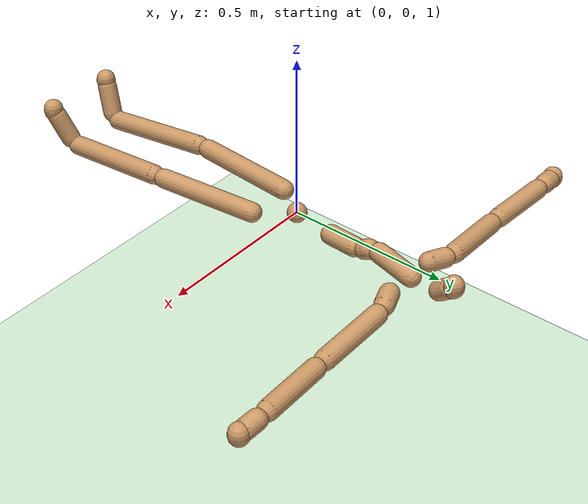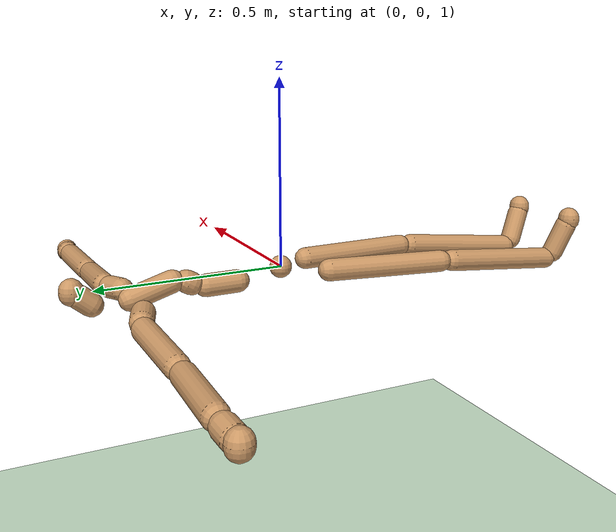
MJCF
<mujoco model="humanoid">
  <compiler angle="degree" inertiafromgeom="true" coordinate="global"/>
  <include file="./common/materials.xml"/>
  <size njmax="8000" nconmax="4000"/>
  <visual>
    <headlight ambient=".4 .4 .4" diffuse=".8 .8 .8" specular="0.1 0.1 0.1"/>
    <map znear=".01"/>
    <quality shadowsize="2048"/>
  </visual>
  <default>
    <joint damping="0.0" armature="0.01" stiffness="0.0" limited="true"/>
    <geom conaffinity="7" condim="1" contype="7" margin="0.001" material="self" rgba="0.8 0.6 .4 1"/>
  </default>
  <statistic extent="3" center="0 0 1"/>
  <option timestep="0.00222222222"/>
  <asset>
    <texture type="skybox" file="./common/sky1.png" gridsize="3 4" gridlayout=".U..LFRB.D.." width="8192" height="8192"/>
    <texture builtin="flat" height="1278" mark="cross" markrgb="1 1 1" name="texgeom" random="0.01" rgb1=".8 .6 .4" rgb2=".8 .6 .4" type="cube" width="127"/>
  </asset>
  <worldbody>
    <light cutoff="100" diffuse="1 1 1" dir="-0 0 -1.3" directional="true" exponent="1" pos="0 0 1.3" specular=".1 .1 .1"/>
    <geom condim="3" friction="1. .1 .1" material="grid" name="floor" pos="0 0 0" rgba=".8 .9 .8 1" size="100 100 .2" type="plane"/>
    <body name="Hips" pos="0.0000 0.0000 1.0000" user="-0.0001 -0.0251 0.9883">
      <joint name="Hips" pos="0.0000 0.0000 1.0000" limited="false" type="free" armature="0" damping="0" stiffness="0"/>
      <geom size="0.0300" type="sphere" pos="0.0000 0.0000 1.0000"/>
      <body name="LeftUpLeg" pos="0.0714 -0.0896 0.9920" user="0.1020 -0.4538 0.9853">
        <joint name="LeftUpLeg_z" type="hinge" pos="0.0714 -0.0896 0.9920" axis="0.0000 0.0000 1.0000" range="-180.0000 180.0000"/>
        <joint name="LeftUpLeg_x" type="hinge" pos="0.0714 -0.0896 0.9920" axis="1.0000 0.0000 0.0000" range="-180.0000 180.0000"/>
        <joint name="LeftUpLeg_y" type="hinge" pos="0.0714 -0.0896 0.9920" axis="0.0000 1.0000 0.0000" range="-180.0000 180.0000"/>
        <geom size="0.0300" type="capsule" fromto="0.0730 -0.1095 0.9916 0.1004 -0.4339 0.9856"/>
        <body name="LeftLeg" pos="0.1020 -0.4538 0.9853" user="0.0905 -0.8371 0.9418">
          <joint name="LeftLeg_z" type="hinge" pos="0.1020 -0.4538 0.9853" axis="0.0000 0.0000 1.0000" range="-180.0000 180.0000"/>
          <joint name="LeftLeg_x" type="hinge" pos="0.1020 -0.4538 0.9853" axis="1.0000 0.0000 0.0000" range="-180.0000 180.0000"/>
          <joint name="LeftLeg_y" type="hinge" pos="0.1020 -0.4538 0.9853" axis="0.0000 1.0000 0.0000" range="-180.0000 180.0000"/>
          <geom size="0.0300" type="capsule" fromto="0.1014 -0.4737 0.9830 0.0911 -0.8173 0.9440"/>
          <body name="LeftFoot" pos="0.0905 -0.8371 0.9418" user="0.1138 -0.8918 1.0561">
            <joint name="LeftFoot_z" type="hinge" pos="0.0905 -0.8371 0.9418" axis="0.0000 0.0000 1.0000" range="-180.0000 180.0000"/>
            <joint name="LeftFoot_x" type="hinge" pos="0.0905 -0.8371 0.9418" axis="1.0000 0.0000 0.0000" range="-180.0000 180.0000"/>
            <joint name="LeftFoot_y" type="hinge" pos="0.0905 -0.8371 0.9418" axis="0.0000 1.0000 0.0000" range="-180.0000 180.0000"/>
            <geom size="0.0300" type="capsule" fromto="0.0941 -0.8456 0.9595 0.1102 -0.8833 1.0384"/>
            <body name="LeftToe" pos="0.1138 -0.8918 1.0561" user="0.1138 -0.8918 1.0561">
              <joint name="LeftToe_z" type="hinge" pos="0.1138 -0.8918 1.0561" axis="0.0000 0.0000 1.0000" range="-180.0000 180.0000"/>
              <joint name="LeftToe_x" type="hinge" pos="0.1138 -0.8918 1.0561" axis="1.0000 0.0000 0.0000" range="-180.0000 180.0000"/>
              <joint name="LeftToe_y" type="hinge" pos="0.1138 -0.8918 1.0561" axis="0.0000 1.0000 0.0000" range="-180.0000 180.0000"/>
              <geom size="0.0300" type="capsule" fromto="0.1138 -0.8918 1.0601 0.1138 -0.8918 1.0521"/>
            </body>
          </body>
        </body>
      </body>
      <body name="RightUpLeg" pos="-0.0690 -0.0890 0.9952" user="-0.1052 -0.4596 0.9860">
        <joint name="RightUpLeg_z" type="hinge" pos="-0.0690 -0.0890 0.9952" axis="0.0000 0.0000 1.0000" range="-180.0000 180.0000"/>
        <joint name="RightUpLeg_x" type="hinge" pos="-0.0690 -0.0890 0.9952" axis="1.0000 0.0000 0.0000" range="-180.0000 180.0000"/>
        <joint name="RightUpLeg_y" type="hinge" pos="-0.0690 -0.0890 0.9952" axis="0.0000 1.0000 0.0000" range="-180.0000 180.0000"/>
        <geom size="0.0300" type="capsule" fromto="-0.0710 -0.1089 0.9947 -0.1032 -0.4397 0.9865"/>
        <body name="RightLeg" pos="-0.1052 -0.4596 0.9860" user="-0.0911 -0.8432 0.9441">
          <joint name="RightLeg_z" type="hinge" pos="-0.1052 -0.4596 0.9860" axis="0.0000 0.0000 1.0000" range="-180.0000 180.0000"/>
          <joint name="RightLeg_x" type="hinge" pos="-0.1052 -0.4596 0.9860" axis="1.0000 0.0000 0.0000" range="-180.0000 180.0000"/>
          <joint name="RightLeg_y" type="hinge" pos="-0.1052 -0.4596 0.9860" axis="0.0000 1.0000 0.0000" range="-180.0000 180.0000"/>
          <geom size="0.0300" type="capsule" fromto="-0.1044 -0.4795 0.9838 -0.0919 -0.8234 0.9463"/>
          <body name="RightFoot" pos="-0.0911 -0.8432 0.9441" user="-0.1132 -0.8897 1.0620">
            <joint name="RightFoot_z" type="hinge" pos="-0.0911 -0.8432 0.9441" axis="0.0000 0.0000 1.0000" range="-180.0000 180.0000"/>
            <joint name="RightFoot_x" type="hinge" pos="-0.0911 -0.8432 0.9441" axis="1.0000 0.0000 0.0000" range="-180.0000 180.0000"/>
            <joint name="RightFoot_y" type="hinge" pos="-0.0911 -0.8432 0.9441" axis="0.0000 1.0000 0.0000" range="-180.0000 180.0000"/>
            <geom size="0.0300" type="capsule" fromto="-0.0946 -0.8505 0.9625 -0.1098 -0.8824 1.0437"/>
            <body name="RightToe" pos="-0.1132 -0.8897 1.0620" user="-0.1132 -0.8897 1.0620">
              <joint name="RightToe_z" type="hinge" pos="-0.1132 -0.8897 1.0620" axis="0.0000 0.0000 1.0000" range="-180.0000 180.0000"/>
              <joint name="RightToe_x" type="hinge" pos="-0.1132 -0.8897 1.0620" axis="1.0000 0.0000 0.0000" range="-180.0000 180.0000"/>
              <joint name="RightToe_y" type="hinge" pos="-0.1132 -0.8897 1.0620" axis="0.0000 1.0000 0.0000" range="-180.0000 180.0000"/>
              <geom size="0.0300" type="capsule" fromto="-0.1132 -0.8897 1.0660 -0.1132 -0.8897 1.0580"/>
            </body>
          </body>
        </body>
      </body>
      <body name="Spine" pos="-0.0025 0.1033 0.9778" user="0.0011 0.2309 0.9761">
        <joint name="Spine_z" type="hinge" pos="-0.0025 0.1033 0.9778" axis="0.0000 0.0000 1.0000" range="-180.0000 180.0000"/>
        <joint name="Spine_x" type="hinge" pos="-0.0025 0.1033 0.9778" axis="1.0000 0.0000 0.0000" range="-180.0000 180.0000"/>
        <joint name="Spine_y" type="hinge" pos="-0.0025 0.1033 0.9778" axis="0.0000 1.0000 0.0000" range="-180.0000 180.0000"/>
        <geom size="0.0300" type="capsule" fromto="-0.0019 0.1232 0.9775 0.0005 0.2109 0.9764"/>
        <body name="Spine1" pos="0.0011 0.2309 0.9761" user="0.0031 0.2800 1.0040">
          <joint name="Spine1_z" type="hinge" pos="0.0011 0.2309 0.9761" axis="0.0000 0.0000 1.0000" range="-180.0000 180.0000"/>
          <joint name="Spine1_x" type="hinge" pos="0.0011 0.2309 0.9761" axis="1.0000 0.0000 0.0000" range="-180.0000 180.0000"/>
          <joint name="Spine1_y" type="hinge" pos="0.0011 0.2309 0.9761" axis="0.0000 1.0000 0.0000" range="-180.0000 180.0000"/>
          <geom size="0.0300" type="capsule" fromto="0.0018 0.2483 0.9860 0.0024 0.2626 0.9941"/>
          <body name="Spine2" pos="0.0031 0.2800 1.0040" user="0.0019 0.4272 0.9612">
            <joint name="Spine2_z" type="hinge" pos="0.0031 0.2800 1.0040" axis="0.0000 0.0000 1.0000" range="-180.0000 180.0000"/>
            <joint name="Spine2_x" type="hinge" pos="0.0031 0.2800 1.0040" axis="1.0000 0.0000 0.0000" range="-180.0000 180.0000"/>
            <joint name="Spine2_y" type="hinge" pos="0.0031 0.2800 1.0040" axis="0.0000 1.0000 0.0000" range="-180.0000 180.0000"/>
            <geom size="0.0300" type="capsule" fromto="0.0029 0.2992 0.9984 0.0020 0.4080 0.9667"/>
            <body name="Neck" pos="0.0011 0.4882 0.9542" user="0.0047 0.5506 1.0044">
              <joint name="Neck_z" type="hinge" pos="0.0011 0.4882 0.9542" axis="0.0000 0.0000 1.0000" range="-180.0000 180.0000"/>
              <joint name="Neck_x" type="hinge" pos="0.0011 0.4882 0.9542" axis="1.0000 0.0000 0.0000" range="-180.0000 180.0000"/>
              <joint name="Neck_y" type="hinge" pos="0.0011 0.4882 0.9542" axis="0.0000 1.0000 0.0000" range="-180.0000 180.0000"/>
              <geom size="0.0300" type="capsule" fromto="0.0020 0.5038 0.9667 0.0038 0.5350 0.9919"/>
              <body name="Mouth" pos="0.0047 0.5506 1.0044" user="0.0047 0.5506 1.0044">
                <joint name="Mouth_z" type="hinge" pos="0.0047 0.5506 1.0044" axis="0.0000 0.0000 1.0000" range="-180.0000 180.0000"/>
                <joint name="Mouth_x" type="hinge" pos="0.0047 0.5506 1.0044" axis="1.0000 0.0000 0.0000" range="-180.0000 180.0000"/>
                <joint name="Mouth_y" type="hinge" pos="0.0047 0.5506 1.0044" axis="0.0000 1.0000 0.0000" range="-180.0000 180.0000"/>
                <geom size="0.0300" type="capsule" fromto="0.0047 0.5506 1.0084 0.0047 0.5506 1.0004"/>
              </body>
            </body>
            <body name="LeftChest" pos="0.0784 0.3978 0.9671" user="0.1637 0.4295 0.9598">
              <joint name="LeftChest_z" type="hinge" pos="0.0784 0.3978 0.9671" axis="0.0000 0.0000 1.0000" range="-180.0000 180.0000"/>
              <joint name="LeftChest_x" type="hinge" pos="0.0784 0.3978 0.9671" axis="1.0000 0.0000 0.0000" range="-180.0000 180.0000"/>
              <joint name="LeftChest_y" type="hinge" pos="0.0784 0.3978 0.9671" axis="0.0000 1.0000 0.0000" range="-180.0000 180.0000"/>
              <geom size="0.0300" type="capsule" fromto="0.0971 0.4047 0.9655 0.1450 0.4226 0.9614"/>
              <body name="LeftShoulder" pos="0.1637 0.4295 0.9598" user="0.4150 0.4175 0.9323">
                <joint name="LeftShoulder_z" type="hinge" pos="0.1637 0.4295 0.9598" axis="0.0000 0.0000 1.0000" range="-180.0000 180.0000"/>
                <joint name="LeftShoulder_x" type="hinge" pos="0.1637 0.4295 0.9598" axis="1.0000 0.0000 0.0000" range="-180.0000 180.0000"/>
                <joint name="LeftShoulder_y" type="hinge" pos="0.1637 0.4295 0.9598" axis="0.0000 1.0000 0.0000" range="-180.0000 180.0000"/>
                <geom size="0.0300" type="capsule" fromto="0.1836 0.4286 0.9576 0.3951 0.4185 0.9345"/>
                <body name="LeftArm" pos="0.4150 0.4175 0.9323" user="0.6530 0.4265 0.9323">
                  <joint name="LeftArm_z" type="hinge" pos="0.4150 0.4175 0.9323" axis="0.0000 0.0000 1.0000" range="-180.0000 180.0000"/>
                  <joint name="LeftArm_x" type="hinge" pos="0.4150 0.4175 0.9323" axis="1.0000 0.0000 0.0000" range="-180.0000 180.0000"/>
                  <joint name="LeftArm_y" type="hinge" pos="0.4150 0.4175 0.9323" axis="0.0000 1.0000 0.0000" range="-180.0000 180.0000"/>
                  <geom size="0.0300" type="capsule" fromto="0.4349 0.4183 0.9323 0.6330 0.4258 0.9323"/>
                  <body name="LeftWrist" pos="0.6530 0.4265 0.9323" user="0.7326 0.4169 0.9191">
                    <joint name="LeftWrist_z" type="hinge" pos="0.6530 0.4265 0.9323" axis="0.0000 0.0000 1.0000" range="-180.0000 180.0000"/>
                    <joint name="LeftWrist_x" type="hinge" pos="0.6530 0.4265 0.9323" axis="1.0000 0.0000 0.0000" range="-180.0000 180.0000"/>
                    <joint name="LeftWrist_y" type="hinge" pos="0.6530 0.4265 0.9323" axis="0.0000 1.0000 0.0000" range="-180.0000 180.0000"/>
                    <geom size="0.0300" type="capsule" fromto="0.6726 0.4242 0.9291 0.7131 0.4192 0.9224"/>
                    <body name="LeftHand" pos="0.7326 0.4169 0.9191" user="0.7326 0.4169 0.9191">
                      <joint name="LeftHand_z" type="hinge" pos="0.7326 0.4169 0.9191" axis="0.0000 0.0000 1.0000" range="-180.0000 180.0000"/>
                      <joint name="LeftHand_x" type="hinge" pos="0.7326 0.4169 0.9191" axis="1.0000 0.0000 0.0000" range="-180.0000 180.0000"/>
                      <joint name="LeftHand_y" type="hinge" pos="0.7326 0.4169 0.9191" axis="0.0000 1.0000 0.0000" range="-180.0000 180.0000"/>
                      <geom size="0.0300" type="capsule" fromto="0.7326 0.4169 0.9231 0.7326 0.4169 0.9151"/>
                    </body>
                  </body>
                </body>
              </body>
            </body>
            <body name="RightChest" pos="-0.0739 0.3956 0.9622" user="-0.1631 0.4284 0.9524">
              <joint name="RightChest_z" type="hinge" pos="-0.0739 0.3956 0.9622" axis="0.0000 0.0000 1.0000" range="-180.0000 180.0000"/>
              <joint name="RightChest_x" type="hinge" pos="-0.0739 0.3956 0.9622" axis="1.0000 0.0000 0.0000" range="-180.0000 180.0000"/>
              <joint name="RightChest_y" type="hinge" pos="-0.0739 0.3956 0.9622" axis="0.0000 1.0000 0.0000" range="-180.0000 180.0000"/>
              <geom size="0.0300" type="capsule" fromto="-0.0926 0.4025 0.9601 -0.1445 0.4215 0.9544"/>
              <body name="RightShoulder" pos="-0.1631 0.4284 0.9524" user="-0.4091 0.4152 0.9322">
                <joint name="RightShoulder_z" type="hinge" pos="-0.1631 0.4284 0.9524" axis="0.0000 0.0000 1.0000" range="-180.0000 180.0000"/>
                <joint name="RightShoulder_x" type="hinge" pos="-0.1631 0.4284 0.9524" axis="1.0000 0.0000 0.0000" range="-180.0000 180.0000"/>
                <joint name="RightShoulder_y" type="hinge" pos="-0.1631 0.4284 0.9524" axis="0.0000 1.0000 0.0000" range="-180.0000 180.0000"/>
                <geom size="0.0300" type="capsule" fromto="-0.1830 0.4273 0.9507 -0.3892 0.4163 0.9338"/>
                <body name="RightArm" pos="-0.4091 0.4152 0.9322" user="-0.6543 0.4238 0.9287">
                  <joint name="RightArm_z" type="hinge" pos="-0.4091 0.4152 0.9322" axis="0.0000 0.0000 1.0000" range="-180.0000 180.0000"/>
                  <joint name="RightArm_x" type="hinge" pos="-0.4091 0.4152 0.9322" axis="1.0000 0.0000 0.0000" range="-180.0000 180.0000"/>
                  <joint name="RightArm_y" type="hinge" pos="-0.4091 0.4152 0.9322" axis="0.0000 1.0000 0.0000" range="-180.0000 180.0000"/>
                  <geom size="0.0300" type="capsule" fromto="-0.4291 0.4159 0.9319 -0.6343 0.4231 0.9290"/>
                  <body name="RightWrist" pos="-0.6543 0.4238 0.9287" user="-0.7347 0.4166 0.9182">
                    <joint name="RightWrist_z" type="hinge" pos="-0.6543 0.4238 0.9287" axis="0.0000 0.0000 1.0000" range="-180.0000 180.0000"/>
                    <joint name="RightWrist_x" type="hinge" pos="-0.6543 0.4238 0.9287" axis="1.0000 0.0000 0.0000" range="-180.0000 180.0000"/>
                    <joint name="RightWrist_y" type="hinge" pos="-0.6543 0.4238 0.9287" axis="0.0000 1.0000 0.0000" range="-180.0000 180.0000"/>
                    <geom size="0.0300" type="capsule" fromto="-0.6741 0.4221 0.9261 -0.7149 0.4184 0.9208"/>
                    <body name="RightHand" pos="-0.7347 0.4166 0.9182" user="-0.7347 0.4166 0.9182">
                      <joint name="RightHand_z" type="hinge" pos="-0.7347 0.4166 0.9182" axis="0.0000 0.0000 1.0000" range="-180.0000 180.0000"/>
                      <joint name="RightHand_x" type="hinge" pos="-0.7347 0.4166 0.9182" axis="1.0000 0.0000 0.0000" range="-180.0000 180.0000"/>
                      <joint name="RightHand_y" type="hinge" pos="-0.7347 0.4166 0.9182" axis="0.0000 1.0000 0.0000" range="-180.0000 180.0000"/>
                      <geom size="0.0300" type="capsule" fromto="-0.7347 0.4166 0.9222 -0.7347 0.4166 0.9142"/>
                    </body>
                  </body>
                </body>
              </body>
            </body>
          </body>
        </body>
      </body>
    </body>
  </worldbody>
  <actuator>
    <motor name="LeftUpLeg_z" joint="LeftUpLeg_z" gear="1"/>
    <motor name="LeftUpLeg_x" joint="LeftUpLeg_x" gear="1"/>
    <motor name="LeftUpLeg_y" joint="LeftUpLeg_y" gear="1"/>
    <motor name="LeftLeg_z" joint="LeftLeg_z" gear="1"/>
    <motor name="LeftLeg_x" joint="LeftLeg_x" gear="1"/>
    <motor name="LeftLeg_y" joint="LeftLeg_y" gear="1"/>
    <motor name="LeftFoot_z" joint="LeftFoot_z" gear="1"/>
    <motor name="LeftFoot_x" joint="LeftFoot_x" gear="1"/>
    <motor name="LeftFoot_y" joint="LeftFoot_y" gear="1"/>
    <motor name="LeftToe_z" joint="LeftToe_z" gear="1"/>
    <motor name="LeftToe_x" joint="LeftToe_x" gear="1"/>
    <motor name="LeftToe_y" joint="LeftToe_y" gear="1"/>
    <motor name="RightUpLeg_z" joint="RightUpLeg_z" gear="1"/>
    <motor name="RightUpLeg_x" joint="RightUpLeg_x" gear="1"/>
    <motor name="RightUpLeg_y" joint="RightUpLeg_y" gear="1"/>
    <motor name="RightLeg_z" joint="RightLeg_z" gear="1"/>
    <motor name="RightLeg_x" joint="RightLeg_x" gear="1"/>
    <motor name="RightLeg_y" joint="RightLeg_y" gear="1"/>
    <motor name="RightFoot_z" joint="RightFoot_z" gear="1"/>
    <motor name="RightFoot_x" joint="RightFoot_x" gear="1"/>
    <motor name="RightFoot_y" joint="RightFoot_y" gear="1"/>
    <motor name="RightToe_z" joint="RightToe_z" gear="1"/>
    <motor name="RightToe_x" joint="RightToe_x" gear="1"/>
    <motor name="RightToe_y" joint="RightToe_y" gear="1"/>
    <motor name="Spine_z" joint="Spine_z" gear="1"/>
    <motor name="Spine_x" joint="Spine_x" gear="1"/>
    <motor name="Spine_y" joint="Spine_y" gear="1"/>
    <motor name="Spine1_z" joint="Spine1_z" gear="1"/>
    <motor name="Spine1_x" joint="Spine1_x" gear="1"/>
    <motor name="Spine1_y" joint="Spine1_y" gear="1"/>
    <motor name="Spine2_z" joint="Spine2_z" gear="1"/>
    <motor name="Spine2_x" joint="Spine2_x" gear="1"/>
    <motor name="Spine2_y" joint="Spine2_y" gear="1"/>
    <motor name="Neck_z" joint="Neck_z" gear="1"/>
    <motor name="Neck_x" joint="Neck_x" gear="1"/>
    <motor name="Neck_y" joint="Neck_y" gear="1"/>
    <motor name="Mouth_z" joint="Mouth_z" gear="1"/>
    <motor name="Mouth_x" joint="Mouth_x" gear="1"/>
    <motor name="Mouth_y" joint="Mouth_y" gear="1"/>
    <motor name="LeftChest_z" joint="LeftChest_z" gear="1"/>
    <motor name="LeftChest_x" joint="LeftChest_x" gear="1"/>
    <motor name="LeftChest_y" joint="LeftChest_y" gear="1"/>
    <motor name="LeftShoulder_z" joint="LeftShoulder_z" gear="1"/>
    <motor name="LeftShoulder_x" joint="LeftShoulder_x" gear="1"/>
    <motor name="LeftShoulder_y" joint="LeftShoulder_y" gear="1"/>
    <motor name="LeftArm_z" joint="LeftArm_z" gear="1"/>
    <motor name="LeftArm_x" joint="LeftArm_x" gear="1"/>
    <motor name="LeftArm_y" joint="LeftArm_y" gear="1"/>
    <motor name="LeftWrist_z" joint="LeftWrist_z" gear="1"/>
    <motor name="LeftWrist_x" joint="LeftWrist_x" gear="1"/>
    <motor name="LeftWrist_y" joint="LeftWrist_y" gear="1"/>
    <motor name="LeftHand_z" joint="LeftHand_z" gear="1"/>
    <motor name="LeftHand_x" joint="LeftHand_x" gear="1"/>
    <motor name="LeftHand_y" joint="LeftHand_y" gear="1"/>
    <motor name="RightChest_z" joint="RightChest_z" gear="1"/>
    <motor name="RightChest_x" joint="RightChest_x" gear="1"/>
    <motor name="RightChest_y" joint="RightChest_y" gear="1"/>
    <motor name="RightShoulder_z" joint="RightShoulder_z" gear="1"/>
    <motor name="RightShoulder_x" joint="RightShoulder_x" gear="1"/>
    <motor name="RightShoulder_y" joint="RightShoulder_y" gear="1"/>
    <motor name="RightArm_z" joint="RightArm_z" gear="1"/>
    <motor name="RightArm_x" joint="RightArm_x" gear="1"/>
    <motor name="RightArm_y" joint="RightArm_y" gear="1"/>
    <motor name="RightWrist_z" joint="RightWrist_z" gear="1"/>
    <motor name="RightWrist_x" joint="RightWrist_x" gear="1"/>
    <motor name="RightWrist_y" joint="RightWrist_y" gear="1"/>
    <motor name="RightHand_z" joint="RightHand_z" gear="1"/>
    <motor name="RightHand_x" joint="RightHand_x" gear="1"/>
    <motor name="RightHand_y" joint="RightHand_y" gear="1"/>
  </actuator>
</mujoco>

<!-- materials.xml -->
<!--
Common textures, colors and materials to be used throughout this suite. Some
materials such as xxx_highlight are activated on occurence of certain events,
for example receiving a positive reward.
-->
<mujoco>
  <asset>
    <texture name="grid" type="2d" builtin="checker" rgb1=".1 .2 .3" rgb2=".2 .3 .4" width="300" height="300" mark="edge" markrgb=".2 .3 .4"/>
    <material name="grid" texture="grid" texrepeat="1 1" texuniform="true" reflectance=".2"/>
    <texture builtin="checker" height="100" name="texplane" rgb1="0 0 0" rgb2=".8 .8 .8" type="2d" width="100"/>
    <texture name="grass" file="./common/grass.png" type="2d"/>

    <texture name="grid_new" type="2d" builtin="checker" rgb1=".1 .3 .2" rgb2=".2 .4 .3" width="1000" height="1000" mark="none" markrgb=".8 .6 .4"/>
    <material name="grid_new" texture="grid_new" texrepeat="0.2 0.2" texuniform="true" reflectance=".2"/>
    <material name="MatPlane" reflectance="0.5" shininess="1" specular="1" texrepeat="60 60" texture="texplane"/>
    <material name="GrassPlane" reflectance="0.0" shininess="1" specular="1" texrepeat="400 400" texture="grass"/>
    <material name="self" rgba=".7 .5 .3 1"/>
    <material name="self_default" rgba=".7 .5 .3 1"/>
    <material name="self_highlight" rgba="0 .5 .3 1"/>
    <material name="effector" rgba=".7 .4 .2 1"/>
    <material name="effector_default" rgba=".7 .4 .2 1"/>
    <material name="effector_highlight" rgba="0 .5 .3 1"/>
    <material name="decoration" rgba=".3 .5 .7 1"/>
    <material name="eye" rgba="0 .2 1 1"/>
    <material name="target" rgba=".6 .3 .3 1"/>
    <material name="target_default" rgba=".6 .3 .3 1"/>
    <material name="target_highlight" rgba=".6 .3 .3 .4"/>
    <material name="expert" rgba=".6 .3 .3 .4"/>
  </asset>
</mujoco>
